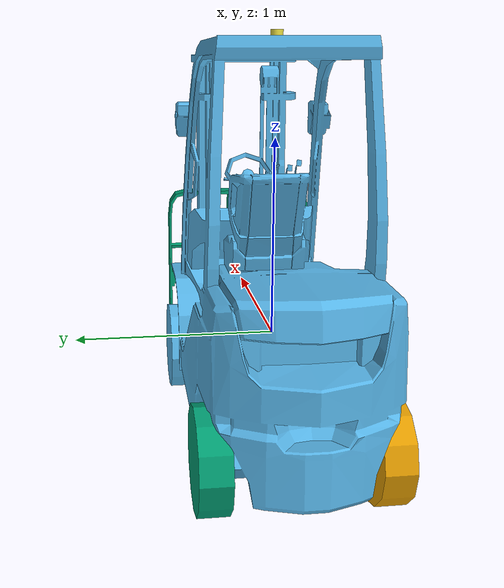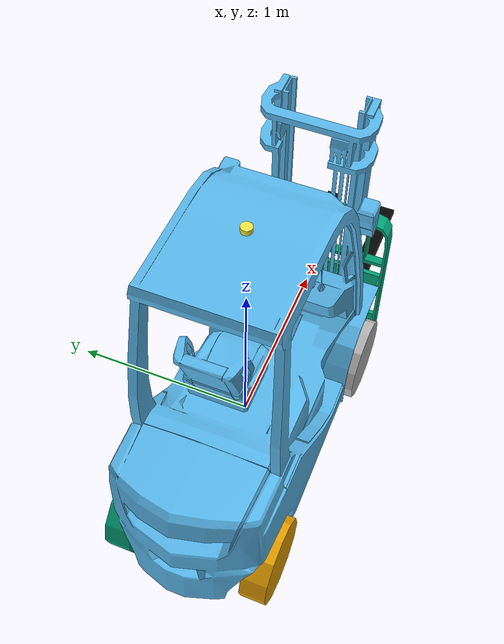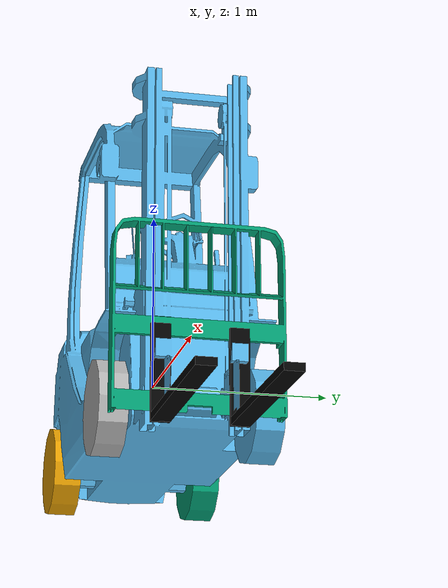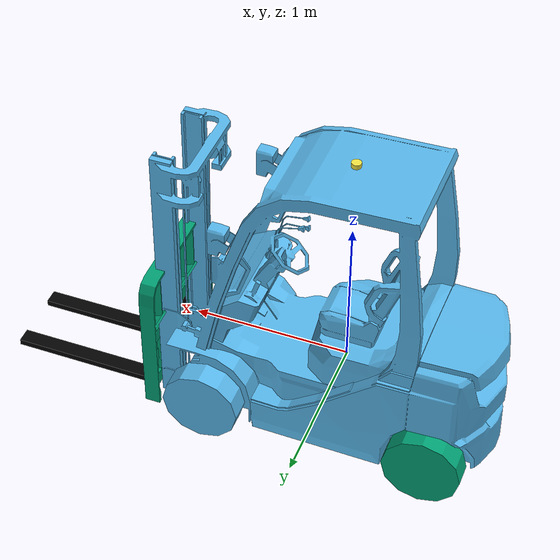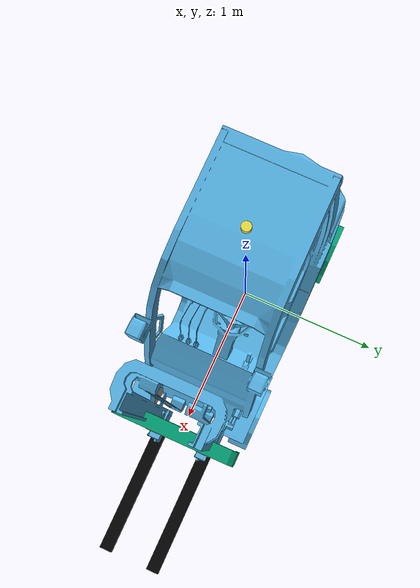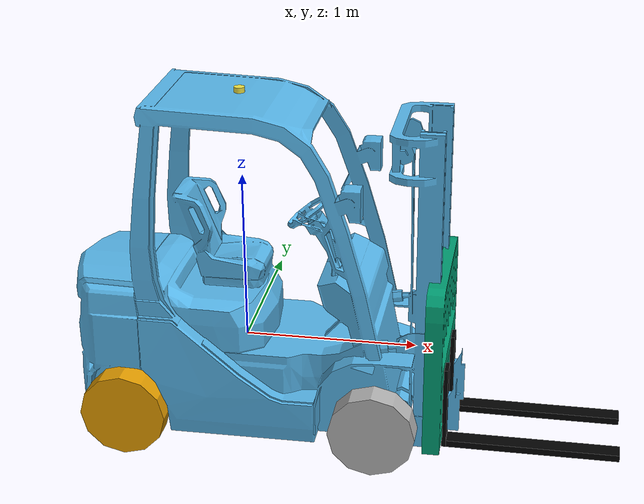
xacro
<?xml version="1.0"?>
<robot xmlns:xacro="http://www.ros.org/wiki/xacro" name="forklift">

  <xacro:arg name="namespace" default="" />
  <xacro:include filename="robot_core.xacro" />

  <gazebo>

    <plugin
      filename="gz-sim-diff-drive-system"
      name="gz::sim::systems::DiffDrive">

      <left_joint>left_wheel_joint</left_joint>
      <left_joint>left_wheel_back_joint</left_joint>
      <right_joint>right_wheel_joint</right_joint>
      <right_joint>right_wheel_back_joint</right_joint>
      <wheel_separation>0.890</wheel_separation>
      <wheel_radius>0.25</wheel_radius>
      <odom_publish_frequency>30</odom_publish_frequency>
      <odom_topic>$(arg namespace)/odom</odom_topic>
      <frame_id>odom</frame_id>
      <tf_topic>$(arg namespace)/tf</tf_topic>
      <topic>$(arg namespace)/cmd_vel</topic>
      <child_frame_id>base_link</child_frame_id>

      <max_linear_acceleration>10</max_linear_acceleration>
      <min_linear_acceleration>-10</min_linear_acceleration>
      <max_angular_acceleration>20</max_angular_acceleration>
      <min_angular_acceleration>-20</min_angular_acceleration>
      <max_linear_velocity>6</max_linear_velocity>
      <min_linear_velocity>-0.5</min_linear_velocity>
      <max_angular_velocity>10</max_angular_velocity>
      <min_angular_velocity>-10</min_angular_velocity>
    </plugin>

    <plugin filename="gz-sim-joint-state-publisher-system"
      name="gz::sim::systems::JointStatePublisher">
      <topic>$(arg namespace)/joint_states</topic>
    </plugin>

    <plugin filename="gz-sim-joint-position-controller-system"
      name="gz::sim::systems::JointPositionController">
      <joint_name>fork_plate_joint</joint_name>
      <initial_position>0.0</initial_position>
      <topic>$(arg namespace)/fork_control</topic>
      <p_gain>4000000</p_gain>
      <i_gain>2000</i_gain>
      <d_gain>5000</d_gain>
      <i_min>-2000</i_min>
      <i_max>2000</i_max>
      <cmd_min>-80000</cmd_min>
      <cmd_max>120000</cmd_max>
    </plugin>

  </gazebo>

</robot>

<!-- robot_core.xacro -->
<robot xmlns:xacro="http://www.ros.org/wiki/xacro">

  <xacro:include filename="inertial_macros.xacro" />
  <xacro:include filename="fork.xacro" />
  <xacro:include filename="wheel.xacro" />

  <material name="white">
    <color rgba="1 1 1 1" />
  </material>

  <!-- BASE LINK -->

  <xacro:property name="scaler" value="1.0" />
  <xacro:property name="base_height" value="2" />
  <xacro:property name="base_width" value="0.895" />
  <xacro:property name="base_length" value="2.29" />

  <material name="darkgray">
    <color rgba="0.01 0.01 0.01 1" />
  </material>

  <xacro:property name="fork_mass" value="15" />

  <!--See:
  https://github.com/ros-navigation/navigation2_tutorials/blob/rolling/sam_bot_description/src/description/sam_bot_description.urdf -->

  <link name="base_footprint">
    <!--MASS
    HERE IS TOTALLY INACCURATE BUT WITH THE REAL MASS OF 1500, ROBOT WAS UNABLE TO TURN,
    SHOULD BE TUNED IN BOTH NAV2 AND GZ SIM DIFF DRIVE IN THE FUTURE-->
    <xacro:inertial_box mass="50" x="${base_length}" y="${base_width}" z="${base_height}">
      <origin xyz="-0.1 0 ${0.35+0.25}" rpy="0 0 0" />
    </xacro:inertial_box>
  </link>

  <joint name="base_link_joint" type="fixed">
    <parent link="base_link" />
    <child link="base_footprint" />
    <!--Set
    the base_footprint down to wheel axis level + half the wheel radius to be exactly at the
    bottom-->
    <origin xyz="0 0 -${0.35+0.25}" rpy="0 0 0" />
  </joint>

  <link name="base_link">
    <visual>
      <origin xyz="0 0 0" />
      <geometry>
        <mesh filename="package://forklift_cpp/models/forklift/meshes/body_correct_scale.dae" />
      </geometry>
    </visual>
    <collision>
      <origin xyz="0 0 0" />
      <geometry>
        <mesh filename="package://forklift_cpp/models/forklift/meshes/body_correct_scale.dae" />
      </geometry>
    </collision>

  </link>

  <xacro:property name="plate_width" value="0.885" />
  <xacro:property name="plate_height" value="1.290" />
  <xacro:property name="plate_length" value="0.1" />

  <link name="fork_plate">
    <visual>
      <origin xyz="0 0 0" rpy="0 0 0" />
      <geometry>
        <mesh filename="package://forklift_cpp/models/forklift/meshes/fork_plate_correct_scale.dae"
          scale="1 1 0.77"
        />
      </geometry>
    </visual>
    <collision>
      <origin xyz="0 0 0" rpy="0 0 0" />
      <geometry>
        <box size="${plate_length} ${plate_width} ${plate_height}" />
      </geometry>
    </collision>
    <xacro:inertial_box mass="50" x="${plate_length}" y="${plate_width}" z="${plate_height}">
      <origin xyz="0 0 0" rpy="0 0 0" />
    </xacro:inertial_box>
  </link>

  <joint name="fork_plate_joint" type="prismatic">
    <parent link="base_link" />
    <child link="fork_plate" />
    <origin xyz="1.15 0 0.09" rpy="0 0 0" />
    <axis xyz="0 0 1" />
    <limit effort="2500" lower="0.0" upper="5.0" velocity="0.5" />
  </joint>

  <xacro:fork id="1" mass="15" scale="1" fork_attach_offsets="0.05 0.2 -0.35"></xacro:fork>
  <xacro:fork id="2" mass="15" scale="1" fork_attach_offsets="0.05 -0.2 -0.35"></xacro:fork>

  <xacro:wheel name="right_wheel" mass="5" scale="1" x="0.8" y="-0.4" z="-0.35" yaw="${pi/2}"
    axis="-1"></xacro:wheel>
  <xacro:wheel name="right_wheel_back" mass="5" scale="1" x="-0.65" y="-0.4" z="-0.35" yaw="${pi/2}"
    axis="-1"></xacro:wheel>
  <xacro:wheel name="left_wheel" mass="5" scale="1" x="0.8" y="0.4" z="-0.35" yaw="-${pi/2}"
    axis="-1"></xacro:wheel>
  <xacro:wheel name="left_wheel_back" mass="5" scale="1" x="-0.65" y="0.4" z="-0.35" yaw="-${pi/2}"
    axis="-1"></xacro:wheel>

  <gazebo>
  </gazebo>

  <gazebo reference="fork_plate">
    <sensor name='sensor_contact' type='contact'>
      <contact>
        <collision>fork_plate_fixed_joint_lump__fork_1_collision_1</collision>
      </contact>
    </sensor>
  </gazebo>

  <link name="rplidar_link">
    <visual>
      <origin xyz="0 0 0" rpy="0 0 0" />
      <geometry>
        <cylinder radius="0.03" length="0.03"></cylinder>
      </geometry>
    </visual>
    <collision>
      <origin xyz="0 0 0" rpy="0 0 0" />
      <geometry>
        <cylinder radius="0.03" length="0.03"></cylinder>
      </geometry>
    </collision>
    <xacro:inertial_cylinder mass="0.1" length="0.03" radius="0.03">
      <origin xyz="0 0 0" rpy="0 0 0" />
    </xacro:inertial_cylinder>
  </link>

  <joint name="rplidar_joint" type="fixed">
    <parent link="base_link" />
    <child link="rplidar_link" />
    <origin xyz="0 0 1.5" rpy="0 0 0" />
  </joint>

  <gazebo reference="rplidar_link">
    <sensor name="rplidar" type="gpu_lidar">
      <update_rate>10.0</update_rate>
      <visualize>true</visualize>
      <always_on>true</always_on>
      <gz_frame_id>rplidar_link</gz_frame_id>
      <topic>$(arg namespace)/scan</topic>
      <lidar>
        <scan>
          <horizontal>
            <samples>360</samples>
            <resolution>1.0</resolution>
            <min_angle>0.000</min_angle>
            <max_angle>6.280000</max_angle>
          </horizontal>
        </scan>
        <range>
          <min>0.164</min>
          <max>20.0</max>
          <resolution>0.01</resolution>
        </range>
      </lidar>
    </sensor>
  </gazebo>

  <!--https://medium.com/@alitekes1/gazebo-sim-plugin-and-sensors-for-acquire-data-from-simulation-environment-681d8e2ad853-->

</robot>

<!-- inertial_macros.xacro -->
<!--
        Copyright (c) Elmeri Pohjois-Koivisto
        See robot.urdf.xacro for licensing
    -->

<robot xmlns:xacro="http://www.ros.org/wiki/xacro">

    <!-- Specify some standard inertial calculations
    https://en.wikipedia.org/wiki/List_of_moments_of_inertia -->
    <!-- These make use of xacro's mathematical functionality -->

    <xacro:macro name="inertial_sphere" params="mass radius *origin">
        <inertial>
            <xacro:insert_block name="origin" />
            <mass value="${mass}" />
            <inertia ixx="${(2/5) * mass * (radius*radius)}" ixy="0.0" ixz="0.0"
                iyy="${(2/5) * mass * (radius*radius)}" iyz="0.0"
                izz="${(2/5) * mass * (radius*radius)}" />
        </inertial>
    </xacro:macro>

    <xacro:macro name="inertial_box" params="mass x y z *origin">
        <inertial>
            <xacro:insert_block name="origin" />
            <mass value="${mass}" />
            <inertia ixx="${(1/12) * mass * (y*y+z*z)}" ixy="0.0" ixz="0.0"
                iyy="${(1/12) * mass * (x*x+z*z)}" iyz="0.0"
                izz="${(1/12) * mass * (x*x+y*y)}" />
        </inertial>
    </xacro:macro>

    <xacro:macro name="inertial_cylinder" params="mass length radius *origin">
        <inertial>
            <xacro:insert_block name="origin" />
            <mass value="${mass}" />
            <inertia ixx="${(1/12) * mass * (3*radius*radius + length*length)}" ixy="0.0" ixz="0.0"
                iyy="${(1/12) * mass * (3*radius*radius + length*length)}" iyz="0.0"
                izz="${(1/2) * mass * (radius*radius)}" />
        </inertial>
    </xacro:macro>

</robot>

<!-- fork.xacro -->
<!--
  Copyright (c) Elmeri Pohjois-Koivisto
  See robot.urdf.xacro for licensing
-->

<robot xmlns:xacro="http://www.ros.org/wiki/xacro">

  <xacro:macro name="fork" params="id mass scale fork_attach_offsets">
    <xacro:include filename="inertial_macros.xacro" />

    <!--
    Dimensions are defined when viewing link from the front:
      height is up
      length is forward (towards you)
      width is sideways (left/right)
    -->

    <xacro:property name="fork_attach_height" value="0.5" />
    <xacro:property name="fork_attach_length" value="0.1" />
    <xacro:property name="fork_attach_width" value="0.025" />
    <xacro:property name="fork_visual_offset" value="0.04" />

    <xacro:property name="fork_height" value="0.04" />
    <xacro:property name="fork_length" value="1.0" />
    <xacro:property name="fork_width" value="0.1" />

    <link name="fork_${id}_attach">
      <visual>
        <origin xyz="0 0 0" rpy="${pi/2} ${pi/2} 0" />

        <geometry>
          <box size="${fork_attach_height} ${fork_attach_width} ${fork_attach_length}" />
        </geometry>
        <material name="darkgray" />
      </visual>

      <collision>
        <gazebo>
          <surface>
            <contact>
              <collide_bitmask>0x01</collide_bitmask>
            </contact>
          </surface>
        </gazebo>
        <origin xyz="0 0 0" rpy="${pi/2} ${pi/2} 0" />
        <geometry>
          <box size="${fork_attach_height} ${fork_attach_width} ${fork_attach_length}" />
        </geometry>
      </collision>

      <xacro:inertial_box mass="${mass / 2}" x="${fork_attach_height}" y="${fork_attach_width}"
        z="${fork_attach_length}">
        <origin xyz="0 0 0" rpy="0 0 0" />
      </xacro:inertial_box>
    </link>

    <link name="fork_${id}">
      <visual>
        <origin xyz="0 0 0" rpy="0 0 0" />

        <geometry>
          <box size="${fork_length} ${fork_width} ${fork_height}" />
        </geometry>
        <material name="darkgray" />
      </visual>

      <collision>
        <origin xyz="0 0 0" rpy="0 0 0" />
        <geometry>
          <box size="${fork_length} ${fork_width} ${fork_height}" />
        </geometry>

      </collision>

      <xacro:inertial_box mass="${mass / 2}" x="${fork_length}" y="${fork_width}" z="${fork_height}">
        <origin xyz="0 0 0" rpy="0 0 0" />
      </xacro:inertial_box>

    </link>

    <joint name="fork_attach_${id}_joint" type="fixed">
      <parent link="fork_plate" />
      <child link="fork_${id}_attach" />
      <origin xyz="${fork_attach_offsets}" rpy="0 0 0" />
    </joint>

    <joint name="fork_${id}_joint" type="fixed">
      <parent link="fork_${id}_attach" />
      <child link="fork_${id}" />
      <origin xyz="${fork_length/2} 0 -${fork_attach_height/2-fork_height/2}" rpy="0 0 0" />
    </joint>

  <gazebo reference="fork_${id}_attach">
    <collision name="your_collision_name">
      <surface>
        <collide_bitmask>0x01</collide_bitmask>
        <contact>
          <collide_bitmask>0x01</collide_bitmask>
        </contact>
      </surface>
    </collision>
</gazebo>

<gazebo reference="fork_${id}">
    <collision name="your_collision_name">
      <surface>
        <collide_bitmask>0x01</collide_bitmask>
        <contact>
          <collide_bitmask>0x01</collide_bitmask>
        </contact>
      </surface>
    </collision>
</gazebo>

<gazebo reference="fork_${id}_joint">
    <preserveFixedJoint>true</preserveFixedJoint>
  </gazebo>

  <gazebo reference="fork_attach_${id}_joint">
    <disableFixedJointLumping>true</disableFixedJointLumping>
    <preserveFixedJoint>true</preserveFixedJoint>
  </gazebo>

    <!-- https://osrf-migration.github.io/sdformat-gh-pages/#!/osrf/sdformat/issues/131/page/1-->

  </xacro:macro>

</robot>

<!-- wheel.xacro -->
<robot xmlns:xacro="http://www.ros.org/wiki/xacro">
  <xacro:property name="wheel_width" value="0.15" />
  <xacro:property name="wheel_radius" value="0.25" />
  <xacro:include filename="inertial_macros.xacro" />
  <xacro:macro name="wheel" params="name mass scale x y z yaw axis">

    <joint name="${name}_joint" type="continuous">
      <parent link="base_link" />
      <child link="${name}" />
      <origin xyz="${x} ${y} ${z}" rpy="${pi/2} 0 0" />
      <axis xyz="0 0 ${axis}" />
    </joint>

    <link name="${name}">
      <visual>
        <origin xyz="0 0 0" rpy="${yaw} 0 0" />
        <geometry>
          <!--The
        package resolves into install/forklift_cpp/share/forklift_cpp/-->
          <mesh filename="package://forklift_cpp/models/forklift/meshes/wheel_correct_scale.dae" />
        </geometry>
      </visual>
      <collision>
        <origin xyz="0 0 0" rpy="0 0 0" />
        <geometry>
          <cylinder radius="${wheel_radius}" length="${wheel_width}" />
        </geometry>
      </collision>
      <xacro:inertial_cylinder mass="5" radius="${wheel_radius}" length="${wheel_width}">
        <origin xyz="0 0 0" rpy="0 0 0" />
      </xacro:inertial_cylinder>
    </link>

  </xacro:macro>

</robot>
